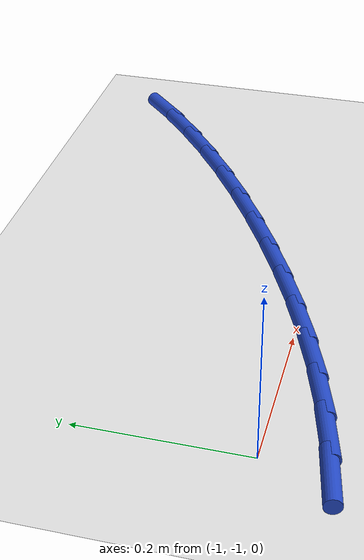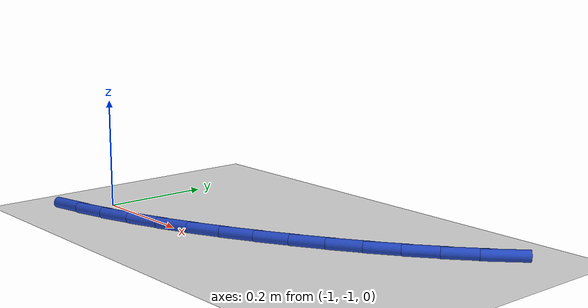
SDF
<sdf version="1.6">
 <world name="default">
  <model name="ground_plane">
   <static>1</static>
   <link name="link">
    <collision name="collision">
     <geometry><plane><normal>0 0 1</normal><size>100 100</size></plane></geometry>
     <surface><friction><ode><mu>100</mu><mu2>50</mu2></ode></friction></surface>
    </collision>
    <visual name="visual">
     <cast_shadows>0</cast_shadows>
     <geometry><plane><normal>0 0 1</normal><size>100 100</size></plane></geometry>
     <material>
      <script><uri>file://media/materials/scripts/gazebo.material</uri><name>Gazebo/WhiteGlow</name></script>
     </material>
    </visual>
   </link>
  </model>
  <model name="line">
   <link name="link_84">
    <pose>-1.016629111486707 -1.0759474859993348 0.01 0 1.57 0.20804923186389104</pose>
    <collision name="collision">
     <geometry><cylinder><radius>0.01</radius><length>0.08</length></cylinder></geometry>
    </collision>
    <visual name="visual">
     <material>
      <script><name>Gazebo/Blue</name><uri>file://media/materials/scripts/gazebo.material</uri></script>
     </material>
     <geometry><cylinder><radius>0.01</radius><length>0.08</length></cylinder></geometry>
    </visual>
   </link>
   <link name="link_85">
    <pose>-0.9569655920717185 -1.0633522844552028 0.01 0 1.57 0.2659314852653096</pose>
    <collision name="collision">
     <geometry><cylinder><radius>0.01</radius><length>0.08</length></cylinder></geometry>
    </collision>
    <visual name="visual">
     <material>
      <script><name>Gazebo/Blue</name><uri>file://media/materials/scripts/gazebo.material</uri></script>
     </material>
     <geometry><cylinder><radius>0.01</radius><length>0.08</length></cylinder></geometry>
    </visual>
   </link>
   <link name="link_86">
    <pose>-0.897630339186942 -1.0471903764785515 0.01 0 1.57 0.31847814319725565</pose>
    <collision name="collision">
     <geometry><cylinder><radius>0.01</radius><length>0.08</length></cylinder></geometry>
    </collision>
    <visual name="visual">
     <material>
      <script><name>Gazebo/Blue</name><uri>file://media/materials/scripts/gazebo.material</uri></script>
     </material>
     <geometry><cylinder><radius>0.01</radius><length>0.08</length></cylinder></geometry>
    </visual>
   </link>
   <link name="link_87">
    <pose>-0.8387520503144757 -1.0277781298740505 0.01 0 1.57 0.3660671392417379</pose>
    <collision name="collision">
     <geometry><cylinder><radius>0.01</radius><length>0.08</length></cylinder></geometry>
    </collision>
    <visual name="visual">
     <material>
      <script><name>Gazebo/Blue</name><uri>file://media/materials/scripts/gazebo.material</uri></script>
     </material>
     <geometry><cylinder><radius>0.01</radius><length>0.08</length></cylinder></geometry>
    </visual>
   </link>
   <link name="link_88">
    <pose>-0.7804594229364213 -1.0054319124463693 0.01 0 1.57 0.40910137077715336</pose>
    <collision name="collision">
     <geometry><cylinder><radius>0.01</radius><length>0.08</length></cylinder></geometry>
    </collision>
    <visual name="visual">
     <material>
      <script><name>Gazebo/Blue</name><uri>file://media/materials/scripts/gazebo.material</uri></script>
     </material>
     <geometry><cylinder><radius>0.01</radius><length>0.08</length></cylinder></geometry>
    </visual>
   </link>
   <link name="link_89">
    <pose>-0.7228811545348769 -0.9804680920001778 0.01 0 1.57 0.44798048507014415</pose>
    <collision name="collision">
     <geometry><cylinder><radius>0.01</radius><length>0.08</length></cylinder></geometry>
    </collision>
    <visual name="visual">
     <material>
      <script><name>Gazebo/Blue</name><uri>file://media/materials/scripts/gazebo.material</uri></script>
     </material>
     <geometry><cylinder><radius>0.01</radius><length>0.08</length></cylinder></geometry>
    </visual>
   </link>
   <link name="link_90">
    <pose>-0.6661459425919436 -0.953203036340146 0.01 0 1.57 0.4830829337686664</pose>
    <collision name="collision">
     <geometry><cylinder><radius>0.01</radius><length>0.08</length></cylinder></geometry>
    </collision>
    <visual name="visual">
     <material>
      <script><name>Gazebo/Blue</name><uri>file://media/materials/scripts/gazebo.material</uri></script>
     </material>
     <geometry><cylinder><radius>0.01</radius><length>0.08</length></cylinder></geometry>
    </visual>
   </link>
   <link name="link_91">
    <pose>-0.6103824845897197 -0.9239531132709429 0.01 0 1.57 0.5149313033171607</pose>
    <collision name="collision">
     <geometry><cylinder><radius>0.01</radius><length>0.08</length></cylinder></geometry>
    </collision>
    <visual name="visual">
     <material>
      <script><name>Gazebo/Blue</name><uri>file://media/materials/scripts/gazebo.material</uri></script>
     </material>
     <geometry><cylinder><radius>0.01</radius><length>0.08</length></cylinder></geometry>
    </visual>
   </link>
   <link name="link_92">
    <pose>-0.5557221326512586 -0.893023504134284 0.01 0 1.57 0.5473351333847454</pose>
    <collision name="collision">
     <geometry><cylinder><radius>0.01</radius><length>0.08</length></cylinder></geometry>
    </collision>
    <visual name="visual">
     <material>
      <script><name>Gazebo/Blue</name><uri>file://media/materials/scripts/gazebo.material</uri></script>
     </material>
     <geometry><cylinder><radius>0.01</radius><length>0.08</length></cylinder></geometry>
    </visual>
   </link>
   <link name="link_93">
    <pose>-0.5023493155968344 -0.860495728948946 0.01 0 1.57 0.5837574733719162</pose>
    <collision name="collision">
     <geometry><cylinder><radius>0.01</radius><length>0.08</length></cylinder></geometry>
    </collision>
    <visual name="visual">
     <material>
      <script><name>Gazebo/Blue</name><uri>file://media/materials/scripts/gazebo.material</uri></script>
     </material>
     <geometry><cylinder><radius>0.01</radius><length>0.08</length></cylinder></geometry>
    </visual>
   </link>
   <link name="link_94">
    <pose>-0.45049745115851764 -0.8262448720398153 0.01 0 1.57 0.6245186934426556</pose>
    <collision name="collision">
     <geometry><cylinder><radius>0.01</radius><length>0.08</length></cylinder></geometry>
    </collision>
    <visual name="visual">
     <material>
      <script><name>Gazebo/Blue</name><uri>file://media/materials/scripts/gazebo.material</uri></script>
     </material>
     <geometry><cylinder><radius>0.01</radius><length>0.08</length></cylinder></geometry>
    </visual>
   </link>
   <link name="link_95">
    <pose>-0.4004017925057356 -0.7901382833328867 0.01 0 1.57 0.6697983977311117</pose>
    <collision name="collision">
     <geometry><cylinder><radius>0.01</radius><length>0.08</length></cylinder></geometry>
    </collision>
    <visual name="visual">
     <material>
      <script><name>Gazebo/Blue</name><uri>file://media/materials/scripts/gazebo.material</uri></script>
     </material>
     <geometry><cylinder><radius>0.01</radius><length>0.08</length></cylinder></geometry>
    </visual>
   </link>
   <link name="link_96">
    <pose>-0.3522975928079184 -0.7520433127541569 0.01 0 1.57 0.7197329729474796</pose>
    <collision name="collision">
     <geometry><cylinder><radius>0.01</radius><length>0.08</length></cylinder></geometry>
    </collision>
    <visual name="visual">
     <material>
      <script><name>Gazebo/Blue</name><uri>file://media/materials/scripts/gazebo.material</uri></script>
     </material>
     <geometry><cylinder><radius>0.01</radius><length>0.08</length></cylinder></geometry>
    </visual>
   </link>
   <link name="link_97">
    <pose>-0.30642010523449437 -0.7118273102296216 0.01 0 1.57 0.7743857954321129</pose>
    <collision name="collision">
     <geometry><cylinder><radius>0.01</radius><length>0.08</length></cylinder></geometry>
    </collision>
    <visual name="visual">
     <material>
      <script><name>Gazebo/Blue</name><uri>file://media/materials/scripts/gazebo.material</uri></script>
     </material>
     <geometry><cylinder><radius>0.01</radius><length>0.08</length></cylinder></geometry>
    </visual>
   </link>
  </model>
 </world>
</sdf>
